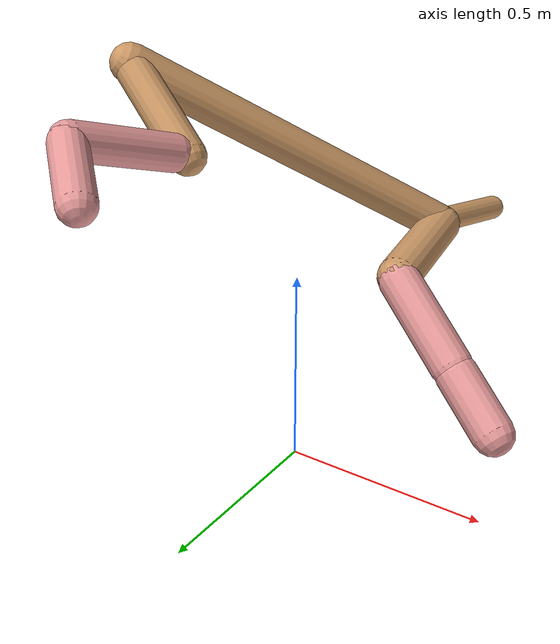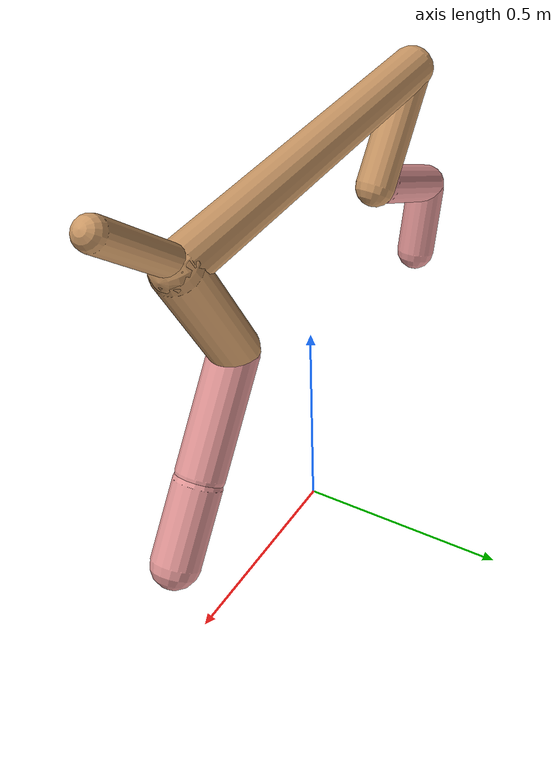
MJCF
<mujoco model="cheetah">
  <compiler angle="radian" coordinate="local" inertiafromgeom="true" settotalmass="14" />
  <default>
    <joint armature=".1" damping=".01" limited="true" solimplimit="0 .8 .03" solreflimit=".02 1" stiffness="8" />
    <geom conaffinity="0" condim="3" contype="1" friction="0.8 .1 .1" rgba="0.8 0.6 .4 1" solimp="0.0 0.8 0.01" solref="0.02 1" />
    <motor ctrllimited="true" ctrlrange="-1 1" />
  </default>
  <size nstack="300000" nuser_geom="1" />
  <option gravity="0 0 -9.81" timestep="0.01" />
  <worldbody>
    <body name="torso" pos="0.0 0.0 0.9710451159103307">
      <joint armature="0" axis="1 0 0" damping="0" limited="false" name="ignorex" pos="0 0 0" stiffness="0" type="slide" />
      <joint armature="0" axis="0 0 1" damping="0" limited="false" name="ignorez" pos="0 0 0" stiffness="0" type="slide" />
      <joint armature="0" axis="0 1 0" damping="0" limited="false" name="ignorey" pos="0 0 0" stiffness="0" type="hinge" />
      <geom fromto="-0.5 0.0 0.0 0.487434623457758 0.0 0.0" name="torso" size="0.052685026975407584" type="capsule" />
      <geom axisangle="0 1 0 .87" name="head" pos="0.587434623457758 0.0 0.1" size="0.034683061006805495 0.15" type="capsule" />

      <body name="bthigh" pos="-.5 0 0">
        <joint axis="0 1 0" damping="6" name="bthigh" pos="0 0 0" range="-.52 1.05" stiffness="240" type="hinge" />
        <geom axisangle="0 1 0 -3.8" name="bthigh" pos="0.09658748682372652 0.0 -0.1255637328708445" size="0.04815987767910568 0.13940306224623983" type="capsule" />
        <body name="bshin" pos="0.15317497364745303 0.0 -0.24112746574168895">
          <joint axis="0 1 0" damping="4.5" name="bshin" pos="0 0 0" range="-.785 .785" stiffness="180" type="hinge" />
          <geom axisangle="0 1 0 -2.03" name="bshin" pos="-0.1348213241586582 0.0 -0.0674106620793291" rgba="0.9 0.6 0.6 1" size="0.04815987767910568 0.14421006439266187" type="capsule" />
          <body name="bfoot" pos="-0.2696426483173164 0.0 -0.1348213241586582">
            <joint axis="0 1 0" damping="3" name="bfoot" pos="0 0 0" range="-.4 .785" stiffness="120" type="hinge" />
            <geom axisangle="0 1 0 -.27" name="bfoot" pos="0.028927929580360934 0.0 -0.09353363897650036" rgba="0.9 0.6 0.6 1" size="0.04815987767910568 0.09037164035273479" type="capsule" />
            <inertial mass="10" />
          </body>
        </body>
      </body>
      <body name="fthigh" pos="0.487434623457758 0.0 0.0">
        <joint axis="0 1 0" damping="4.5" name="fthigh" pos="0 0 0" range="-1.5 0.8" stiffness="180" type="hinge" />
        <geom axisangle="0 1 0 .52" name="fthigh" pos="-0.08900004896314374 0.0 -0.1525715125082464" size="0.055781788732798834 0.17070815943103976" type="capsule" />
        <body name="fshin" pos="-0.1780000979262875 0.0 -0.3051430250164928">
          <joint axis="0 1 0" damping="3" name="fshin" pos="0 0 0" range="-1.2 1.1" stiffness="120" type="hinge" />
          <geom axisangle="0 1 0 -.6" name="fshin" pos="0.08259581760805615 0.0 -0.11436343976500082" rgba="0.9 0.6 0.6 1" size="0.055781788732798834 0.13605311954654295" type="capsule" />
          <body name="ffoot" pos="0.1651916352161123 0.0 -0.22872687953000165">
            <joint axis="0 1 0" damping="1.5" name="ffoot" pos="0 0 0" range="-3.1 -0.3" stiffness="60" type="hinge" />
            <geom axisangle="0 1 0 -.6" name="ffoot" pos="0.05573209129831286 0.0 -0.08669436424182002" rgba="0.9 0.6 0.6 1" size="0.055781788732798834 0.08984639970054724" type="capsule" />
            <inertial mass="10" />
          </body>
        </body>
      </body>
    </body>
  </worldbody>
  <actuator>
    <motor gear="120" joint="bthigh" name="bthigh" />
    <motor gear="90" joint="bshin" name="bshin" />
    <motor gear="60" joint="bfoot" name="bfoot" />
    <motor gear="120" joint="fthigh" name="fthigh" />
    <motor gear="60" joint="fshin" name="fshin" />
    <motor gear="30" joint="ffoot" name="ffoot" />
  </actuator>
</mujoco>
